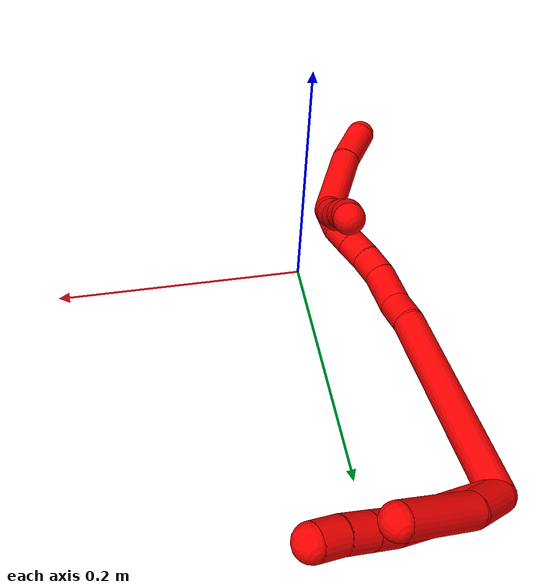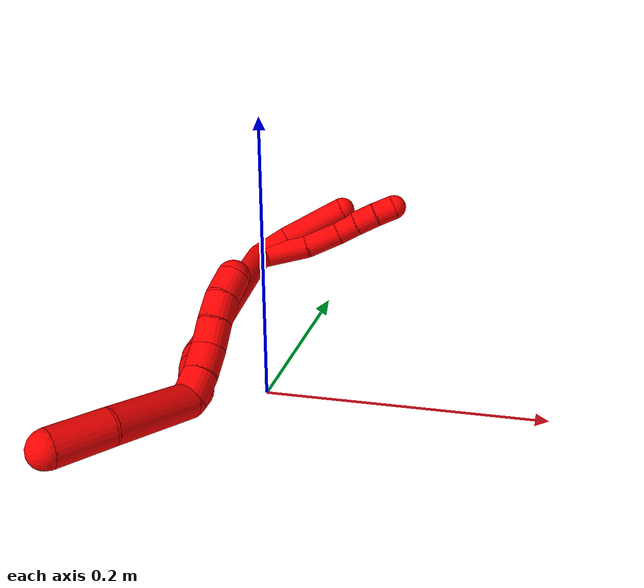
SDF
<sdf version="1.7">
 <world name="default">
  <model name="2">
   <static>0</static>
   <link name="2">
    <collision name="collision-cylinder-e_1_2_8">
     <pose>0.022581 0.011234 0.003047 -1.30593 1.09485 -0.872572</pose>
     <geometry><cylinder><radius>0.0125</radius><length>0.050809</length></cylinder></geometry>
     <surface>
      <friction><ode><mu>1.16</mu><mu2>1.16</mu2><slip1>0</slip1><slip2>0</slip2></ode></friction>
      <contact><ode><kp>1e+06</kp><kd>1</kd><max_vel>0</max_vel><min_depth>0.001</min_depth></ode></contact>
     </surface>
    </collision>
    <visual name="visual-cylinder-e_1_2_8">
     <pose>0.022581 0.011234 0.003047 -1.30593 1.09485 -0.872572</pose>
     <geometry><cylinder><radius>0.0125</radius><length>0.050809</length></cylinder></geometry>
     <material><ambient>1 0 0 1</ambient></material>
    </visual>
    <collision name="collision-cylinder-e_2_8_9">
     <pose>0.061726 0.02745 0.009658 -0.949931 1.21659 -0.687746</pose>
     <geometry><cylinder><radius>0.0125</radius><length>0.035321</length></cylinder></geometry>
     <surface>
      <friction><ode><mu>1.16</mu><mu2>1.16</mu2><slip1>0</slip1><slip2>0</slip2></ode></friction>
      <contact><ode><kp>1e+06</kp><kd>1</kd><max_vel>0</max_vel><min_depth>0.001</min_depth></ode></contact>
     </surface>
    </collision>
    <visual name="visual-cylinder-e_2_8_9">
     <pose>0.061726 0.02745 0.009658 -0.949931 1.21659 -0.687746</pose>
     <geometry><cylinder><radius>0.0125</radius><length>0.035321</length></cylinder></geometry>
     <material><ambient>1 0 0 1</ambient></material>
    </visual>
    <collision name="collision-cylinder-e_3_9_10">
     <pose>0.088506 0.03451 0.014795 -0.922192 1.32102 -0.736736</pose>
     <geometry><cylinder><radius>0.0125</radius><length>0.021086</length></cylinder></geometry>
     <surface>
      <friction><ode><mu>1.16</mu><mu2>1.16</mu2><slip1>0</slip1><slip2>0</slip2></ode></friction>
      <contact><ode><kp>1e+06</kp><kd>1</kd><max_vel>0</max_vel><min_depth>0.001</min_depth></ode></contact>
     </surface>
    </collision>
    <visual name="visual-cylinder-e_3_9_10">
     <pose>0.088506 0.03451 0.014795 -0.922192 1.32102 -0.736736</pose>
     <geometry><cylinder><radius>0.0125</radius><length>0.021086</length></cylinder></geometry>
     <material><ambient>1 0 0 1</ambient></material>
    </visual>
    <collision name="collision-cylinder-e_4_10_11">
     <pose>0.109413 0.038998 0.01783 -1.02628 1.31292 -0.819176</pose>
     <geometry><cylinder><radius>0.0125</radius><length>0.022113</length></cylinder></geometry>
     <surface>
      <friction><ode><mu>1.16</mu><mu2>1.16</mu2><slip1>0</slip1><slip2>0</slip2></ode></friction>
      <contact><ode><kp>1e+06</kp><kd>1</kd><max_vel>0</max_vel><min_depth>0.001</min_depth></ode></contact>
     </surface>
    </collision>
    <visual name="visual-cylinder-e_4_10_11">
     <pose>0.109413 0.038998 0.01783 -1.02628 1.31292 -0.819176</pose>
     <geometry><cylinder><radius>0.0125</radius><length>0.022113</length></cylinder></geometry>
     <material><ambient>1 0 0 1</ambient></material>
    </visual>
    <collision name="collision-cylinder-e_5_11_6">
     <pose>0.129814 0.044411 0.021172 -1.01068 1.22105 -0.7387</pose>
     <geometry><cylinder><radius>0.0125</radius><length>0.020671</length></cylinder></geometry>
     <surface>
      <friction><ode><mu>1.16</mu><mu2>1.16</mu2><slip1>0</slip1><slip2>0</slip2></ode></friction>
      <contact><ode><kp>1e+06</kp><kd>1</kd><max_vel>0</max_vel><min_depth>0.001</min_depth></ode></contact>
     </surface>
    </collision>
    <visual name="visual-cylinder-e_5_11_6">
     <pose>0.129814 0.044411 0.021172 -1.01068 1.22105 -0.7387</pose>
     <geometry><cylinder><radius>0.0125</radius><length>0.020671</length></cylinder></geometry>
     <material><ambient>1 0 0 1</ambient></material>
    </visual>
    <collision name="collision-cylinder-e_1_2_12">
     <pose>0.015407 0.003284 0.007053 -0.435813 1.10319 -0.270816</pose>
     <geometry><cylinder><radius>0.0125</radius><length>0.034519</length></cylinder></geometry>
     <surface>
      <friction><ode><mu>1.16</mu><mu2>1.16</mu2><slip1>0</slip1><slip2>0</slip2></ode></friction>
      <contact><ode><kp>1e+06</kp><kd>1</kd><max_vel>0</max_vel><min_depth>0.001</min_depth></ode></contact>
     </surface>
    </collision>
    <visual name="visual-cylinder-e_1_2_12">
     <pose>0.015407 0.003284 0.007053 -0.435813 1.10319 -0.270816</pose>
     <geometry><cylinder><radius>0.0125</radius><length>0.034519</length></cylinder></geometry>
     <material><ambient>1 0 0 1</ambient></material>
    </visual>
    <collision name="collision-cylinder-e_2_12_5">
     <pose>0.062493 0.012568 0.019794 -0.811923 1.31551 -0.641198</pose>
     <geometry><cylinder><radius>0.0125</radius><length>0.065481</length></cylinder></geometry>
     <surface>
      <friction><ode><mu>1.16</mu><mu2>1.16</mu2><slip1>0</slip1><slip2>0</slip2></ode></friction>
      <contact><ode><kp>1e+06</kp><kd>1</kd><max_vel>0</max_vel><min_depth>0.001</min_depth></ode></contact>
     </surface>
    </collision>
    <visual name="visual-cylinder-e_2_12_5">
     <pose>0.062493 0.012568 0.019794 -0.811923 1.31551 -0.641198</pose>
     <geometry><cylinder><radius>0.0125</radius><length>0.065481</length></cylinder></geometry>
     <material><ambient>1 0 0 1</ambient></material>
    </visual>
    <collision name="collision-cylinder-e_1_2_13">
     <pose>0.001613 -0.0172 -0.077925 2.92435 0.020212 0.184829</pose>
     <geometry><cylinder><radius>0.0125</radius><length>0.159633</length></cylinder></geometry>
     <surface>
      <friction><ode><mu>1.16</mu><mu2>1.16</mu2><slip1>0</slip1><slip2>0</slip2></ode></friction>
      <contact><ode><kp>1e+06</kp><kd>1</kd><max_vel>0</max_vel><min_depth>0.001</min_depth></ode></contact>
     </surface>
    </collision>
    <visual name="visual-cylinder-e_1_2_13">
     <pose>0.001613 -0.0172 -0.077925 2.92435 0.020212 0.184829</pose>
     <geometry><cylinder><radius>0.0125</radius><length>0.159633</length></cylinder></geometry>
     <material><ambient>1 0 0 1</ambient></material>
    </visual>
    <collision name="collision-cylinder-e_2_13_14">
     <pose>0.002909 -0.034947 -0.168082 3.09684 -0.02593 -1.05026</pose>
     <geometry><cylinder><radius>0.0125</radius><length>0.024498</length></cylinder></geometry>
     <surface>
      <friction><ode><mu>1.16</mu><mu2>1.16</mu2><slip1>0</slip1><slip2>0</slip2></ode></friction>
      <contact><ode><kp>1e+06</kp><kd>1</kd><max_vel>0</max_vel><min_depth>0.001</min_depth></ode></contact>
     </surface>
    </collision>
    <visual name="visual-cylinder-e_2_13_14">
     <pose>0.002909 -0.034947 -0.168082 3.09684 -0.02593 -1.05026</pose>
     <geometry><cylinder><radius>0.0125</radius><length>0.024498</length></cylinder></geometry>
     <material><ambient>1 0 0 1</ambient></material>
    </visual>
    <collision name="collision-cylinder-e_3_14_15">
     <pose>0.004317 -0.039618 -0.196344 2.88984 0.103877 0.779579</pose>
     <geometry><cylinder><radius>0.0125</radius><length>0.033281</length></cylinder></geometry>
     <surface>
      <friction><ode><mu>1.16</mu><mu2>1.16</mu2><slip1>0</slip1><slip2>0</slip2></ode></friction>
      <contact><ode><kp>1e+06</kp><kd>1</kd><max_vel>0</max_vel><min_depth>0.001</min_depth></ode></contact>
     </surface>
    </collision>
    <visual name="visual-cylinder-e_3_14_15">
     <pose>0.004317 -0.039618 -0.196344 2.88984 0.103877 0.779579</pose>
     <geometry><cylinder><radius>0.0125</radius><length>0.033281</length></cylinder></geometry>
     <material><ambient>1 0 0 1</ambient></material>
    </visual>
    <collision name="collision-cylinder-e_4_15_16">
     <pose>0.008769 -0.045212 -0.222594 2.99861 0.25814 2.13321</pose>
     <geometry><cylinder><radius>0.0125</radius><length>0.02136</length></cylinder></geometry>
     <surface>
      <friction><ode><mu>1.16</mu><mu2>1.16</mu2><slip1>0</slip1><slip2>0</slip2></ode></friction>
      <contact><ode><kp>1e+06</kp><kd>1</kd><max_vel>0</max_vel><min_depth>0.001</min_depth></ode></contact>
     </surface>
    </collision>
    <visual name="visual-cylinder-e_4_15_16">
     <pose>0.008769 -0.045212 -0.222594 2.99861 0.25814 2.13321</pose>
     <geometry><cylinder><radius>0.0125</radius><length>0.02136</length></cylinder></geometry>
     <material><ambient>1 0 0 1</ambient></material>
    </visual>
    <collision name="collision-cylinder-e_5_16_17">
     <pose>0.01456 -0.047411 -0.242942 3.06989 0.293146 2.66495</pose>
     <geometry><cylinder><radius>0.0125</radius><length>0.021211</length></cylinder></geometry>
     <surface>
      <friction><ode><mu>1.16</mu><mu2>1.16</mu2><slip1>0</slip1><slip2>0</slip2></ode></friction>
      <contact><ode><kp>1e+06</kp><kd>1</kd><max_vel>0</max_vel><min_depth>0.001</min_depth></ode></contact>
     </surface>
    </collision>
    <visual name="visual-cylinder-e_5_16_17">
     <pose>0.01456 -0.047411 -0.242942 3.06989 0.293146 2.66495</pose>
     <geometry><cylinder><radius>0.0125</radius><length>0.021211</length></cylinder></geometry>
     <material><ambient>1 0 0 1</ambient></material>
    </visual>
    <collision name="collision-cylinder-e_6_17_18">
     <pose>0.021279 -0.049333 -0.262305 3.01289 0.373933 2.48498</pose>
     <geometry><cylinder><radius>0.0125</radius><length>0.02001</length></cylinder></geometry>
     <surface>
      <friction><ode><mu>1.16</mu><mu2>1.16</mu2><slip1>0</slip1><slip2>0</slip2></ode></friction>
      <contact><ode><kp>1e+06</kp><kd>1</kd><max_vel>0</max_vel><min_depth>0.001</min_depth></ode></contact>
     </surface>
    </collision>
    <visual name="visual-cylinder-e_6_17_18">
     <pose>0.021279 -0.049333 -0.262305 3.01289 0.373933 2.48498</pose>
     <geometry><cylinder><radius>0.0125</radius><length>0.02001</length></cylinder></geometry>
     <material><ambient>1 0 0 1</ambient></material>
    </visual>
    <collision name="collision-cylinder-e_7_18_1">
     <pose>0.027215 -0.054062 -0.280618 2.77038 0.230067 1.10326</pose>
     <geometry><cylinder><radius>0.0125</radius><length>0.020007</length></cylinder></geometry>
     <surface>
      <friction><ode><mu>1.16</mu><mu2>1.16</mu2><slip1>0</slip1><slip2>0</slip2></ode></friction>
      <contact><ode><kp>1e+06</kp><kd>1</kd><max_vel>0</max_vel><min_depth>0.001</min_depth></ode></contact>
     </surface>
    </collision>
    <visual name="visual-cylinder-e_7_18_1">
     <pose>0.027215 -0.054062 -0.280618 2.77038 0.230067 1.10326</pose>
     <geometry><cylinder><radius>0.0125</radius><length>0.020007</length></cylinder></geometry>
     <material><ambient>1 0 0 1</ambient></material>
    </visual>
    <collision name="collision-cylinder-e_1_1_19">
     <pose>0.033887 -0.058961 -0.280814 0.152611 0.454594 0.035363</pose>
     <geometry><cylinder><radius>0.0125</radius><length>0.02</length></cylinder></geometry>
     <surface>
      <friction><ode><mu>1.16</mu><mu2>1.16</mu2><slip1>0</slip1><slip2>0</slip2></ode></friction>
      <contact><ode><kp>1e+06</kp><kd>1</kd><max_vel>0</max_vel><min_depth>0.001</min_depth></ode></contact>
     </surface>
    </collision>
    <visual name="visual-cylinder-e_1_1_19">
     <pose>0.033887 -0.058961 -0.280814 0.152611 0.454594 0.035363</pose>
     <geometry><cylinder><radius>0.0125</radius><length>0.02</length></cylinder></geometry>
     <material><ambient>1 0 0 1</ambient></material>
    </visual>
    <collision name="collision-cylinder-e_2_19_20">
     <pose>0.04187 -0.062367 -0.262828 0.220463 0.367415 0.041123</pose>
     <geometry><cylinder><radius>0.0125</radius><length>0.02</length></cylinder></geometry>
     <surface>
      <friction><ode><mu>1.16</mu><mu2>1.16</mu2><slip1>0</slip1><slip2>0</slip2></ode></friction>
      <contact><ode><kp>1e+06</kp><kd>1</kd><max_vel>0</max_vel><min_depth>0.001</min_depth></ode></contact>
     </surface>
    </collision>
    <visual name="visual-cylinder-e_2_19_20">
     <pose>0.04187 -0.062367 -0.262828 0.220463 0.367415 0.041123</pose>
     <geometry><cylinder><radius>0.0125</radius><length>0.02</length></cylinder></geometry>
     <material><ambient>1 0 0 1</ambient></material>
    </visual>
    <collision name="collision-cylinder-e_3_20_21">
     <pose>0.04981 -0.067928 -0.245432 0.401528 0.449829 0.093051</pose>
     <geometry><cylinder><radius>0.0125</radius><length>0.02</length></cylinder></geometry>
     <surface>
      <friction><ode><mu>1.16</mu><mu2>1.16</mu2><slip1>0</slip1><slip2>0</slip2></ode></friction>
      <contact><ode><kp>1e+06</kp><kd>1</kd><max_vel>0</max_vel><min_depth>0.001</min_depth></ode></contact>
     </surface>
    </collision>
    <visual name="visual-cylinder-e_3_20_21">
     <pose>0.04981 -0.067928 -0.245432 0.401528 0.449829 0.093051</pose>
     <geometry><cylinder><radius>0.0125</radius><length>0.02</length></cylinder></geometry>
     <material><ambient>1 0 0 1</ambient></material>
    </visual>
    <collision name="collision-cylinder-e_4_21_22">
     <pose>0.058357 -0.074185 -0.22849 0.306399 0.433364 0.067957</pose>
     <geometry><cylinder><radius>0.0125</radius><length>0.02</length></cylinder></geometry>
     <surface>
      <friction><ode><mu>1.16</mu><mu2>1.16</mu2><slip1>0</slip1><slip2>0</slip2></ode></friction>
      <contact><ode><kp>1e+06</kp><kd>1</kd><max_vel>0</max_vel><min_depth>0.001</min_depth></ode></contact>
     </surface>
    </collision>
    <visual name="visual-cylinder-e_4_21_22">
     <pose>0.058357 -0.074185 -0.22849 0.306399 0.433364 0.067957</pose>
     <geometry><cylinder><radius>0.0125</radius><length>0.02</length></cylinder></geometry>
     <material><ambient>1 0 0 1</ambient></material>
    </visual>
    <collision name="collision-cylinder-e_5_22_4">
     <pose>0.06719 -0.077813 -0.21102 0.100708 0.481743 0.024758</pose>
     <geometry><cylinder><radius>0.0125</radius><length>0.02</length></cylinder></geometry>
     <surface>
      <friction><ode><mu>1.16</mu><mu2>1.16</mu2><slip1>0</slip1><slip2>0</slip2></ode></friction>
      <contact><ode><kp>1e+06</kp><kd>1</kd><max_vel>0</max_vel><min_depth>0.001</min_depth></ode></contact>
     </surface>
    </collision>
    <visual name="visual-cylinder-e_5_22_4">
     <pose>0.06719 -0.077813 -0.21102 0.100708 0.481743 0.024758</pose>
     <geometry><cylinder><radius>0.0125</radius><length>0.02</length></cylinder></geometry>
     <material><ambient>1 0 0 1</ambient></material>
    </visual>
    <collision name="collision-cylinder-e_1_1_23">
     <pose>0.020437 -0.076647 -0.312428 2.44407 -0.29642 -0.779227</pose>
     <geometry><cylinder><radius>0.0125</radius><length>0.062027</length></cylinder></geometry>
     <surface>
      <friction><ode><mu>1.16</mu><mu2>1.16</mu2><slip1>0</slip1><slip2>0</slip2></ode></friction>
      <contact><ode><kp>1e+06</kp><kd>1</kd><max_vel>0</max_vel><min_depth>0.001</min_depth></ode></contact>
     </surface>
    </collision>
    <visual name="visual-cylinder-e_1_1_23">
     <pose>0.020437 -0.076647 -0.312428 2.44407 -0.29642 -0.779227</pose>
     <geometry><cylinder><radius>0.0125</radius><length>0.062027</length></cylinder></geometry>
     <material><ambient>1 0 0 1</ambient></material>
    </visual>
    <collision name="collision-cylinder-e_2_23_3">
     <pose>0.003032 -0.106941 -0.347985 2.42179 -0.45509 -1.10329</pose>
     <geometry><cylinder><radius>0.0125</radius><length>0.037973</length></cylinder></geometry>
     <surface>
      <friction><ode><mu>1.16</mu><mu2>1.16</mu2><slip1>0</slip1><slip2>0</slip2></ode></friction>
      <contact><ode><kp>1e+06</kp><kd>1</kd><max_vel>0</max_vel><min_depth>0.001</min_depth></ode></contact>
     </surface>
    </collision>
    <visual name="visual-cylinder-e_2_23_3">
     <pose>0.003032 -0.106941 -0.347985 2.42179 -0.45509 -1.10329</pose>
     <geometry><cylinder><radius>0.0125</radius><length>0.037973</length></cylinder></geometry>
     <material><ambient>1 0 0 1</ambient></material>
    </visual>
    <collision name="collision-sphere-3">
     <pose>-0.005313 -0.118184 -0.360808 0 -0 0</pose>
     <geometry><sphere><radius>0.0125</radius></sphere></geometry>
     <surface>
      <friction><ode><mu>1.16</mu><mu2>1.16</mu2><slip1>0</slip1><slip2>0</slip2></ode></friction>
      <contact><ode><kp>1e+06</kp><kd>1</kd><max_vel>0</max_vel><min_depth>0.001</min_depth></ode></contact>
     </surface>
    </collision>
    <visual name="visual-sphere-3">
     <pose>-0.005313 -0.118184 -0.360808 0 -0 0</pose>
     <geometry><sphere><radius>0.0125</radius></sphere></geometry>
     <material><ambient>1 0 0 1</ambient></material>
    </visual>
    <collision name="collision-sphere-23">
     <pose>0.011378 -0.095699 -0.335161 0 -0 0</pose>
     <geometry><sphere><radius>0.0125</radius></sphere></geometry>
     <surface>
      <friction><ode><mu>1.16</mu><mu2>1.16</mu2><slip1>0</slip1><slip2>0</slip2></ode></friction>
      <contact><ode><kp>1e+06</kp><kd>1</kd><max_vel>0</max_vel><min_depth>0.001</min_depth></ode></contact>
     </surface>
    </collision>
    <visual name="visual-sphere-23">
     <pose>0.011378 -0.095699 -0.335161 0 -0 0</pose>
     <geometry><sphere><radius>0.0125</radius></sphere></geometry>
     <material><ambient>1 0 0 1</ambient></material>
    </visual>
    <collision name="collision-sphere-4">
     <pose>0.071823 -0.078704 -0.202203 0 -0 0</pose>
     <geometry><sphere><radius>0.0125</radius></sphere></geometry>
     <surface>
      <friction><ode><mu>1.16</mu><mu2>1.16</mu2><slip1>0</slip1><slip2>0</slip2></ode></friction>
      <contact><ode><kp>1e+06</kp><kd>1</kd><max_vel>0</max_vel><min_depth>0.001</min_depth></ode></contact>
     </surface>
    </collision>
    <visual name="visual-sphere-4">
     <pose>0.071823 -0.078704 -0.202203 0 -0 0</pose>
     <geometry><sphere><radius>0.0125</radius></sphere></geometry>
     <material><ambient>1 0 0 1</ambient></material>
    </visual>
    <collision name="collision-sphere-22">
     <pose>0.062557 -0.076922 -0.219837 0 -0 0</pose>
     <geometry><sphere><radius>0.0125</radius></sphere></geometry>
     <surface>
      <friction><ode><mu>1.16</mu><mu2>1.16</mu2><slip1>0</slip1><slip2>0</slip2></ode></friction>
      <contact><ode><kp>1e+06</kp><kd>1</kd><max_vel>0</max_vel><min_depth>0.001</min_depth></ode></contact>
     </surface>
    </collision>
    <visual name="visual-sphere-22">
     <pose>0.062557 -0.076922 -0.219837 0 -0 0</pose>
     <geometry><sphere><radius>0.0125</radius></sphere></geometry>
     <material><ambient>1 0 0 1</ambient></material>
    </visual>
    <collision name="collision-sphere-21">
     <pose>0.054158 -0.071447 -0.237143 0 -0 0</pose>
     <geometry><sphere><radius>0.0125</radius></sphere></geometry>
     <surface>
      <friction><ode><mu>1.16</mu><mu2>1.16</mu2><slip1>0</slip1><slip2>0</slip2></ode></friction>
      <contact><ode><kp>1e+06</kp><kd>1</kd><max_vel>0</max_vel><min_depth>0.001</min_depth></ode></contact>
     </surface>
    </collision>
    <visual name="visual-sphere-21">
     <pose>0.054158 -0.071447 -0.237143 0 -0 0</pose>
     <geometry><sphere><radius>0.0125</radius></sphere></geometry>
     <material><ambient>1 0 0 1</ambient></material>
    </visual>
    <collision name="collision-sphere-20">
     <pose>0.045462 -0.064408 -0.253721 0 -0 0</pose>
     <geometry><sphere><radius>0.0125</radius></sphere></geometry>
     <surface>
      <friction><ode><mu>1.16</mu><mu2>1.16</mu2><slip1>0</slip1><slip2>0</slip2></ode></friction>
      <contact><ode><kp>1e+06</kp><kd>1</kd><max_vel>0</max_vel><min_depth>0.001</min_depth></ode></contact>
     </surface>
    </collision>
    <visual name="visual-sphere-20">
     <pose>0.045462 -0.064408 -0.253721 0 -0 0</pose>
     <geometry><sphere><radius>0.0125</radius></sphere></geometry>
     <material><ambient>1 0 0 1</ambient></material>
    </visual>
    <collision name="collision-sphere-6">
     <pose>0.139523 0.047411 0.023054 0 -0 0</pose>
     <geometry><sphere><radius>0.0125</radius></sphere></geometry>
     <surface>
      <friction><ode><mu>1.16</mu><mu2>1.16</mu2><slip1>0</slip1><slip2>0</slip2></ode></friction>
      <contact><ode><kp>1e+06</kp><kd>1</kd><max_vel>0</max_vel><min_depth>0.001</min_depth></ode></contact>
     </surface>
    </collision>
    <visual name="visual-sphere-6">
     <pose>0.139523 0.047411 0.023054 0 -0 0</pose>
     <geometry><sphere><radius>0.0125</radius></sphere></geometry>
     <material><ambient>1 0 0 1</ambient></material>
    </visual>
    <collision name="collision-sphere-11">
     <pose>0.120104 0.04141 0.019291 0 -0 0</pose>
     <geometry><sphere><radius>0.0125</radius></sphere></geometry>
     <surface>
      <friction><ode><mu>1.16</mu><mu2>1.16</mu2><slip1>0</slip1><slip2>0</slip2></ode></friction>
      <contact><ode><kp>1e+06</kp><kd>1</kd><max_vel>0</max_vel><min_depth>0.001</min_depth></ode></contact>
     </surface>
    </collision>
    <visual name="visual-sphere-11">
     <pose>0.120104 0.04141 0.019291 0 -0 0</pose>
     <geometry><sphere><radius>0.0125</radius></sphere></geometry>
     <material><ambient>1 0 0 1</ambient></material>
    </visual>
    <collision name="collision-sphere-10">
     <pose>0.098722 0.036586 0.01637 0 -0 0</pose>
     <geometry><sphere><radius>0.0125</radius></sphere></geometry>
     <surface>
      <friction><ode><mu>1.16</mu><mu2>1.16</mu2><slip1>0</slip1><slip2>0</slip2></ode></friction>
      <contact><ode><kp>1e+06</kp><kd>1</kd><max_vel>0</max_vel><min_depth>0.001</min_depth></ode></contact>
     </surface>
    </collision>
    <visual name="visual-sphere-10">
     <pose>0.098722 0.036586 0.01637 0 -0 0</pose>
     <geometry><sphere><radius>0.0125</radius></sphere></geometry>
     <material><ambient>1 0 0 1</ambient></material>
    </visual>
    <collision name="collision-sphere-9">
     <pose>0.07829 0.032433 0.013221 0 -0 0</pose>
     <geometry><sphere><radius>0.0125</radius></sphere></geometry>
     <surface>
      <friction><ode><mu>1.16</mu><mu2>1.16</mu2><slip1>0</slip1><slip2>0</slip2></ode></friction>
      <contact><ode><kp>1e+06</kp><kd>1</kd><max_vel>0</max_vel><min_depth>0.001</min_depth></ode></contact>
     </surface>
    </collision>
    <visual name="visual-sphere-9">
     <pose>0.07829 0.032433 0.013221 0 -0 0</pose>
     <geometry><sphere><radius>0.0125</radius></sphere></geometry>
     <material><ambient>1 0 0 1</ambient></material>
    </visual>
    <collision name="collision-sphere-2">
     <geometry><sphere><radius>0.0125</radius></sphere></geometry>
     <surface>
      <friction><ode><mu>1.16</mu><mu2>1.16</mu2><slip1>0</slip1><slip2>0</slip2></ode></friction>
      <contact><ode><kp>1e+06</kp><kd>1</kd><max_vel>0</max_vel><min_depth>0.001</min_depth></ode></contact>
     </surface>
    </collision>
    <visual name="visual-sphere-2">
     <geometry><sphere><radius>0.0125</radius></sphere></geometry>
     <material><ambient>1 0 0 1</ambient></material>
    </visual>
    <collision name="collision-sphere-19">
     <pose>0.038278 -0.060327 -0.271934 0 -0 0</pose>
     <geometry><sphere><radius>0.0125</radius></sphere></geometry>
     <surface>
      <friction><ode><mu>1.16</mu><mu2>1.16</mu2><slip1>0</slip1><slip2>0</slip2></ode></friction>
      <contact><ode><kp>1e+06</kp><kd>1</kd><max_vel>0</max_vel><min_depth>0.001</min_depth></ode></contact>
     </surface>
    </collision>
    <visual name="visual-sphere-19">
     <pose>0.038278 -0.060327 -0.271934 0 -0 0</pose>
     <geometry><sphere><radius>0.0125</radius></sphere></geometry>
     <material><ambient>1 0 0 1</ambient></material>
    </visual>
    <collision name="collision-sphere-8">
     <pose>0.045162 0.022468 0.006094 0 -0 0</pose>
     <geometry><sphere><radius>0.0125</radius></sphere></geometry>
     <surface>
      <friction><ode><mu>1.16</mu><mu2>1.16</mu2><slip1>0</slip1><slip2>0</slip2></ode></friction>
      <contact><ode><kp>1e+06</kp><kd>1</kd><max_vel>0</max_vel><min_depth>0.001</min_depth></ode></contact>
     </surface>
    </collision>
    <visual name="visual-sphere-8">
     <pose>0.045162 0.022468 0.006094 0 -0 0</pose>
     <geometry><sphere><radius>0.0125</radius></sphere></geometry>
     <material><ambient>1 0 0 1</ambient></material>
    </visual>
    <collision name="collision-sphere-12">
     <pose>0.030813 0.006568 0.014105 0 -0 0</pose>
     <geometry><sphere><radius>0.0125</radius></sphere></geometry>
     <surface>
      <friction><ode><mu>1.16</mu><mu2>1.16</mu2><slip1>0</slip1><slip2>0</slip2></ode></friction>
      <contact><ode><kp>1e+06</kp><kd>1</kd><max_vel>0</max_vel><min_depth>0.001</min_depth></ode></contact>
     </surface>
    </collision>
    <visual name="visual-sphere-12">
     <pose>0.030813 0.006568 0.014105 0 -0 0</pose>
     <geometry><sphere><radius>0.0125</radius></sphere></geometry>
     <material><ambient>1 0 0 1</ambient></material>
    </visual>
    <collision name="collision-sphere-5">
     <pose>0.094172 0.018567 0.025483 0 -0 0</pose>
     <geometry><sphere><radius>0.0125</radius></sphere></geometry>
     <surface>
      <friction><ode><mu>1.16</mu><mu2>1.16</mu2><slip1>0</slip1><slip2>0</slip2></ode></friction>
      <contact><ode><kp>1e+06</kp><kd>1</kd><max_vel>0</max_vel><min_depth>0.001</min_depth></ode></contact>
     </surface>
    </collision>
    <visual name="visual-sphere-5">
     <pose>0.094172 0.018567 0.025483 0 -0 0</pose>
     <geometry><sphere><radius>0.0125</radius></sphere></geometry>
     <material><ambient>1 0 0 1</ambient></material>
    </visual>
    <collision name="collision-sphere-13">
     <pose>0.003226 -0.034399 -0.15585 0 -0 0</pose>
     <geometry><sphere><radius>0.0125</radius></sphere></geometry>
     <surface>
      <friction><ode><mu>1.16</mu><mu2>1.16</mu2><slip1>0</slip1><slip2>0</slip2></ode></friction>
      <contact><ode><kp>1e+06</kp><kd>1</kd><max_vel>0</max_vel><min_depth>0.001</min_depth></ode></contact>
     </surface>
    </collision>
    <visual name="visual-sphere-13">
     <pose>0.003226 -0.034399 -0.15585 0 -0 0</pose>
     <geometry><sphere><radius>0.0125</radius></sphere></geometry>
     <material><ambient>1 0 0 1</ambient></material>
    </visual>
    <collision name="collision-sphere-14">
     <pose>0.002591 -0.035495 -0.180314 0 -0 0</pose>
     <geometry><sphere><radius>0.0125</radius></sphere></geometry>
     <surface>
      <friction><ode><mu>1.16</mu><mu2>1.16</mu2><slip1>0</slip1><slip2>0</slip2></ode></friction>
      <contact><ode><kp>1e+06</kp><kd>1</kd><max_vel>0</max_vel><min_depth>0.001</min_depth></ode></contact>
     </surface>
    </collision>
    <visual name="visual-sphere-14">
     <pose>0.002591 -0.035495 -0.180314 0 -0 0</pose>
     <geometry><sphere><radius>0.0125</radius></sphere></geometry>
     <material><ambient>1 0 0 1</ambient></material>
    </visual>
    <collision name="collision-sphere-15">
     <pose>0.006042 -0.04374 -0.212373 0 -0 0</pose>
     <geometry><sphere><radius>0.0125</radius></sphere></geometry>
     <surface>
      <friction><ode><mu>1.16</mu><mu2>1.16</mu2><slip1>0</slip1><slip2>0</slip2></ode></friction>
      <contact><ode><kp>1e+06</kp><kd>1</kd><max_vel>0</max_vel><min_depth>0.001</min_depth></ode></contact>
     </surface>
    </collision>
    <visual name="visual-sphere-15">
     <pose>0.006042 -0.04374 -0.212373 0 -0 0</pose>
     <geometry><sphere><radius>0.0125</radius></sphere></geometry>
     <material><ambient>1 0 0 1</ambient></material>
    </visual>
    <collision name="collision-sphere-16">
     <pose>0.011495 -0.046683 -0.232814 0 -0 0</pose>
     <geometry><sphere><radius>0.0125</radius></sphere></geometry>
     <surface>
      <friction><ode><mu>1.16</mu><mu2>1.16</mu2><slip1>0</slip1><slip2>0</slip2></ode></friction>
      <contact><ode><kp>1e+06</kp><kd>1</kd><max_vel>0</max_vel><min_depth>0.001</min_depth></ode></contact>
     </surface>
    </collision>
    <visual name="visual-sphere-16">
     <pose>0.011495 -0.046683 -0.232814 0 -0 0</pose>
     <geometry><sphere><radius>0.0125</radius></sphere></geometry>
     <material><ambient>1 0 0 1</ambient></material>
    </visual>
    <collision name="collision-sphere-17">
     <pose>0.017624 -0.048138 -0.253069 0 -0 0</pose>
     <geometry><sphere><radius>0.0125</radius></sphere></geometry>
     <surface>
      <friction><ode><mu>1.16</mu><mu2>1.16</mu2><slip1>0</slip1><slip2>0</slip2></ode></friction>
      <contact><ode><kp>1e+06</kp><kd>1</kd><max_vel>0</max_vel><min_depth>0.001</min_depth></ode></contact>
     </surface>
    </collision>
    <visual name="visual-sphere-17">
     <pose>0.017624 -0.048138 -0.253069 0 -0 0</pose>
     <geometry><sphere><radius>0.0125</radius></sphere></geometry>
     <material><ambient>1 0 0 1</ambient></material>
    </visual>
    <collision name="collision-sphere-18">
     <pose>0.024933 -0.050529 -0.271542 0 -0 0</pose>
     <geometry><sphere><radius>0.0125</radius></sphere></geometry>
     <surface>
      <friction><ode><mu>1.16</mu><mu2>1.16</mu2><slip1>0</slip1><slip2>0</slip2></ode></friction>
      <contact><ode><kp>1e+06</kp><kd>1</kd><max_vel>0</max_vel><min_depth>0.001</min_depth></ode></contact>
     </surface>
    </collision>
    <visual name="visual-sphere-18">
     <pose>0.024933 -0.050529 -0.271542 0 -0 0</pose>
     <geometry><sphere><radius>0.0125</radius></sphere></geometry>
     <material><ambient>1 0 0 1</ambient></material>
    </visual>
    <collision name="collision-sphere-1">
     <pose>0.029496 -0.057595 -0.289694 0 -0 0</pose>
     <geometry><sphere><radius>0.0125</radius></sphere></geometry>
     <surface>
      <friction><ode><mu>1.16</mu><mu2>1.16</mu2><slip1>0</slip1><slip2>0</slip2></ode></friction>
      <contact><ode><kp>1e+06</kp><kd>1</kd><max_vel>0</max_vel><min_depth>0.001</min_depth></ode></contact>
     </surface>
    </collision>
    <visual name="visual-sphere-1">
     <pose>0.029496 -0.057595 -0.289694 0 -0 0</pose>
     <geometry><sphere><radius>0.0125</radius></sphere></geometry>
     <material><ambient>1 0 0 1</ambient></material>
    </visual>
    <inertial>
     <pose>0.031019 -0.026154 -0.130463 0 -0 0</pose>
     <mass>0.75</mass>
     <inertia>
      <ixx>0.000438</ixx>
      <ixy>0</ixy>
      <ixz>0</ixz>
      <iyy>-0.000252</iyy>
      <iyz>0</iyz>
      <izz>1.1e-05</izz>
     </inertia>
    </inertial>
   </link>
   <pose>-0.083704 0.239565 0.028594 -1.25122 -0.624995 0.003638</pose>
  </model>
 </world>
</sdf>
